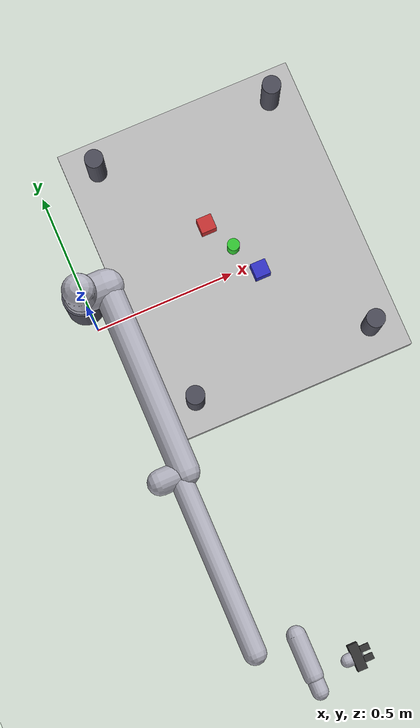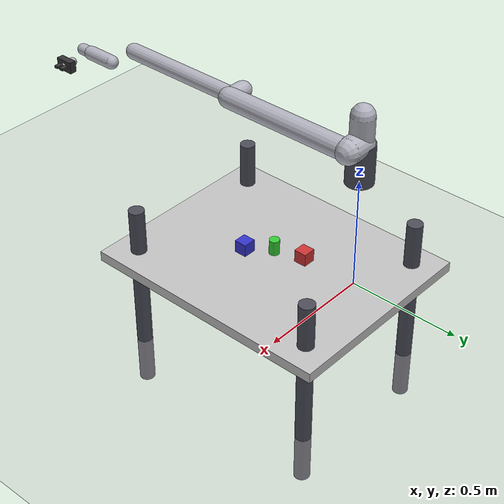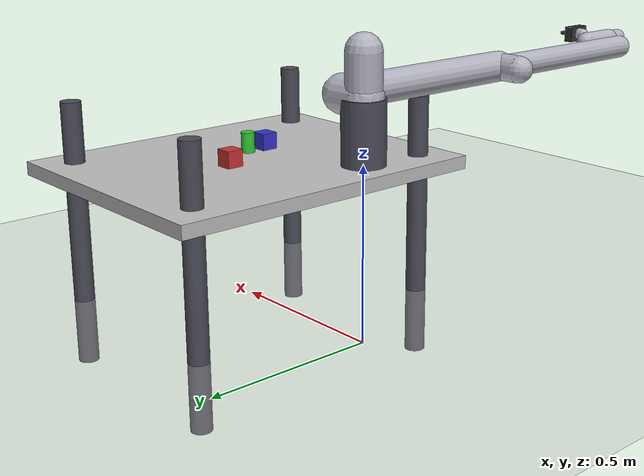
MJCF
<!-- CR10 robotic arm MuJoCo scene for LIBERO-style tasks.
     Based on CR10 URDF kinematic parameters from dobot_description.
     Fixed base (no Ranger mobile platform). -->
<mujoco model="cr10_scene">
  <compiler angle="radian" meshdir="../../rangerboxcr10lidar_description/meshes" />
  <option timestep="0.002" gravity="0 0 -9.81" />

  <default>
    <joint armature="0.01" damping="0.5" />
    <geom condim="4" friction="1.0 0.005 0.001" />
    <motor ctrlrange="-100 100" ctrllimited="true" />
  </default>

  <asset>
    <texture type="skybox" builtin="gradient" rgb1="0.6 0.7 0.8" rgb2="0.2 0.2 0.3" width="512" height="512" />
    <texture name="texplane" type="2d" builtin="checker" rgb1="0.8 0.8 0.8" rgb2="0.7 0.7 0.7" width="512" height="512" />
    <material name="matplane" texture="texplane" texrepeat="4 4" reflectance="0.1" />
    <material name="metal" rgba="0.7 0.7 0.75 1" specular="0.5" shininess="0.5" />
    <material name="dark_metal" rgba="0.3 0.3 0.35 1" specular="0.3" shininess="0.3" />
    <material name="gripper_mat" rgba="0.2 0.2 0.2 1" />
    <material name="red" rgba="0.8 0.2 0.2 1" />
    <material name="blue" rgba="0.2 0.2 0.8 1" />
    <material name="green" rgba="0.2 0.8 0.2 1" />
  </asset>

  <worldbody>
    <!-- Ground plane -->
    <geom name="floor" type="plane" size="2 2 0.1" material="matplane" />
    <light directional="true" diffuse="0.8 0.8 0.8" specular="0.3 0.3 0.3" pos="0 0 4" dir="0 0 -1" />
    <light directional="true" diffuse="0.4 0.4 0.4" pos="2 2 3" dir="-1 -1 -1" />

    <!-- Table -->
    <body name="table" pos="0.5 0 0.4">
      <geom name="table_top" type="box" size="0.4 0.5 0.02" pos="0 0 0" material="matplane" mass="20" />
      <geom name="table_leg1" type="cylinder" size="0.03 0.4" pos="0.3 0.4 -0.2" material="dark_metal" />
      <geom name="table_leg2" type="cylinder" size="0.03 0.4" pos="-0.3 0.4 -0.2" material="dark_metal" />
      <geom name="table_leg3" type="cylinder" size="0.03 0.4" pos="0.3 -0.4 -0.2" material="dark_metal" />
      <geom name="table_leg4" type="cylinder" size="0.03 0.4" pos="-0.3 -0.4 -0.2" material="dark_metal" />
    </body>

    <!-- CR10 Arm -->
    <body name="base_link" pos="0 0 0.5">
      <geom name="base" type="cylinder" size="0.06 0.08825" pos="0 0 0.08825" material="dark_metal" mass="1.83" />

      <!-- Joint 1: base rotation (Z-axis) -->
      <body name="Link1" pos="0 0 0.1765">
        <joint name="joint1" type="hinge" axis="0 0 1" range="-3.14 3.14" />
        <geom name="link1" type="capsule" fromto="0 0 0 0 0 0.12" size="0.05" material="metal" mass="4.16" />

        <!-- Joint 2: shoulder (Z-axis, with frame rotation) -->
        <body name="Link2" pos="0 0 0" euler="1.5708 1.5708 0">
          <joint name="joint2" type="hinge" axis="0 0 1" range="-3.14 3.14" />
          <geom name="link2_geom1" type="capsule" fromto="0 0 0 0 0 0.08" size="0.055" material="metal" mass="11.31" />
          <geom name="link2_geom2" type="capsule" fromto="0 0 0.08 -0.607 0 0.08" size="0.045" material="metal" />

          <!-- Joint 3: elbow (Z-axis) -->
          <body name="Link3" pos="-0.607 0 0">
            <joint name="joint3" type="hinge" axis="0 0 1" range="-2.861 2.861" />
            <geom name="link3_geom1" type="capsule" fromto="0 0 0 0 0 0.06" size="0.04" material="metal" mass="4.89" />
            <geom name="link3_geom2" type="capsule" fromto="0 0 0.06 -0.568 0 0.06" size="0.035" material="metal" />

            <!-- Joint 4: wrist pitch (Z-axis, with frame rotation) -->
            <body name="Link4" pos="-0.568 0 0.191" euler="0 0 -1.5708">
              <joint name="joint4" type="hinge" axis="0 0 1" range="-3.14 3.14" />
              <geom name="link4" type="capsule" fromto="0 0 0 0 -0.125 0" size="0.03" material="metal" mass="1.17" />

              <!-- Joint 5: wrist roll (Z-axis, with frame rotation) -->
              <body name="Link5" pos="0 -0.125 0" euler="1.5708 0 0">
                <joint name="joint5" type="hinge" axis="0 0 1" range="-3.14 3.14" />
                <geom name="link5" type="capsule" fromto="0 0 0 0 0 0.05" size="0.025" material="metal" mass="1.22" />

                <!-- Joint 6: wrist rotate (Z-axis, with frame rotation) -->
                <body name="Link6" pos="0 0.1084 0" euler="-1.5708 0 0">
                  <joint name="joint6" type="hinge" axis="0 0 1" range="-6.28 6.28" />
                  <geom name="link6" type="capsule" fromto="0 0 0 0 0 0.03" size="0.02" material="metal" mass="0.21" />

                  <!-- Gripper (simplified parallel jaw) -->
                  <body name="gripper_base" pos="0 0 0.03">
                    <geom name="gripper_base_geom" type="box" size="0.025 0.04 0.015" material="gripper_mat" mass="0.3" />

                    <!-- Wrist camera (D455) -->
                    <camera name="wrist_cam" pos="0 -0.06 0.03" xyaxes="0 -1 0 0 0 1" fovy="60" />

                    <!-- Left finger -->
                    <body name="left_finger" pos="0 -0.015 0.015">
                      <joint name="gripper_joint" type="hinge" axis="0 1 0" range="0 0.04" />
                      <geom name="left_finger_geom" type="box" size="0.005 0.01 0.03" material="gripper_mat" mass="0.05" />
                    </body>

                    <!-- Right finger (mimic) -->
                    <body name="right_finger" pos="0 0.015 0.015">
                      <joint name="gripper_joint_mimic" type="hinge" axis="0 1 0" range="0 0.04" />
                      <geom name="right_finger_geom" type="box" size="0.005 0.01 0.03" material="gripper_mat" mass="0.05" />
                    </body>
                  </body>
                </body>
              </body>
            </body>
          </body>
        </body>
      </body>
    </body>

    <!-- Third-person camera -->
    <camera name="third_person" pos="1.0 -0.8 1.2" xyaxes="0.7 -0.7 0 0.3 0.3 1" fovy="50" />

    <!-- Manipulable objects on table -->
    <body name="red_block" pos="0.45 0.1 0.45">
      <joint name="red_block_joint" type="free" />
      <geom name="red_block" type="box" size="0.025 0.025 0.025" material="red" mass="0.1" />
    </body>

    <body name="blue_block" pos="0.55 -0.1 0.45">
      <joint name="blue_block_joint" type="free" />
      <geom name="blue_block" type="box" size="0.025 0.025 0.025" material="blue" mass="0.1" />
    </body>

    <body name="green_cylinder" pos="0.5 0.0 0.47">
      <joint name="green_cylinder_joint" type="free" />
      <geom name="green_cylinder" type="cylinder" size="0.02 0.03" material="green" mass="0.08" />
    </body>
  </worldbody>

  <actuator>
    <motor name="act_joint1" joint="joint1" gear="50" />
    <motor name="act_joint2" joint="joint2" gear="80" />
    <motor name="act_joint3" joint="joint3" gear="60" />
    <motor name="act_joint4" joint="joint4" gear="30" />
    <motor name="act_joint5" joint="joint5" gear="30" />
    <motor name="act_joint6" joint="joint6" gear="15" />
    <motor name="act_gripper" joint="gripper_joint" gear="10" />
  </actuator>

  <equality>
    <joint joint1="gripper_joint" joint2="gripper_joint_mimic" polycoef="0 -1 0 0 0" />
  </equality>
</mujoco>
